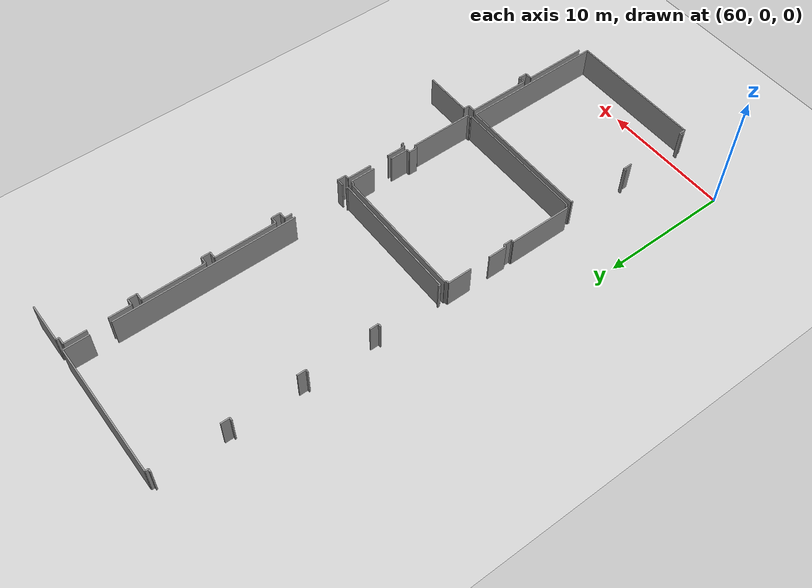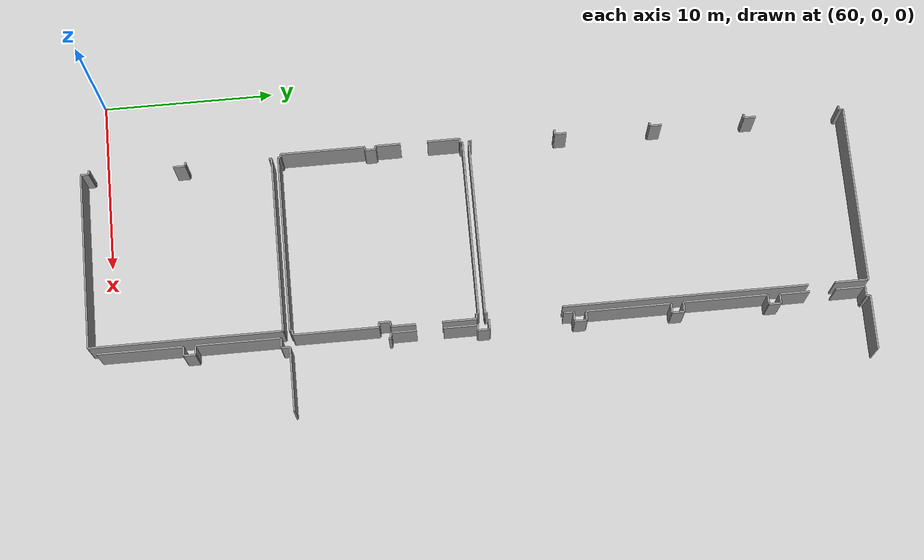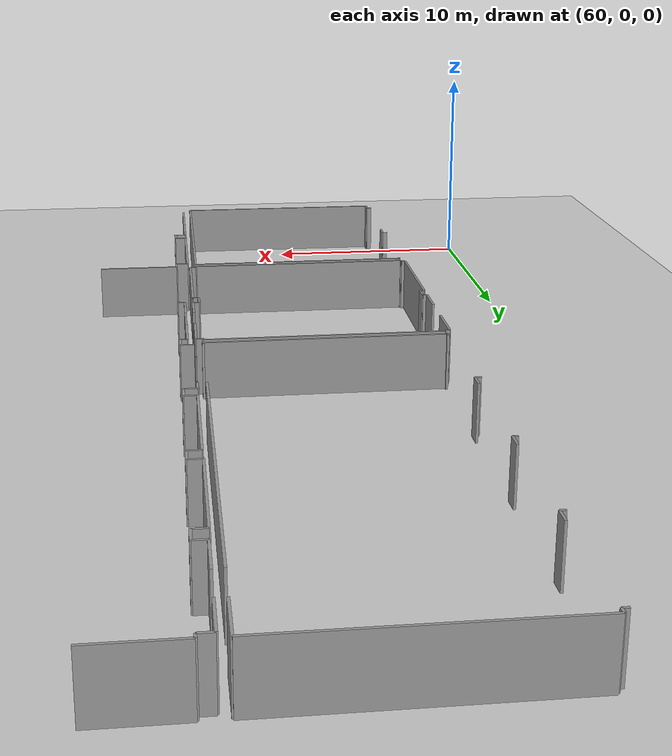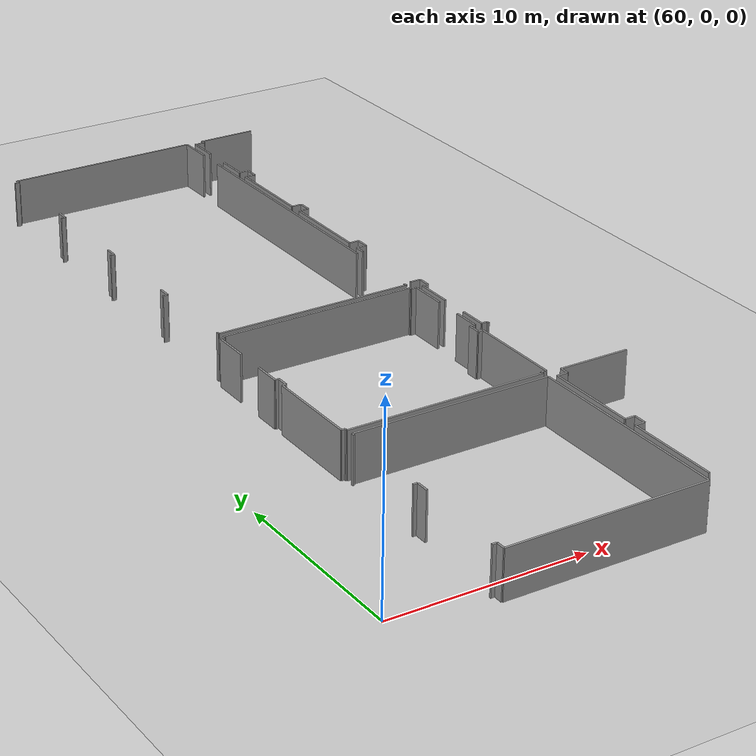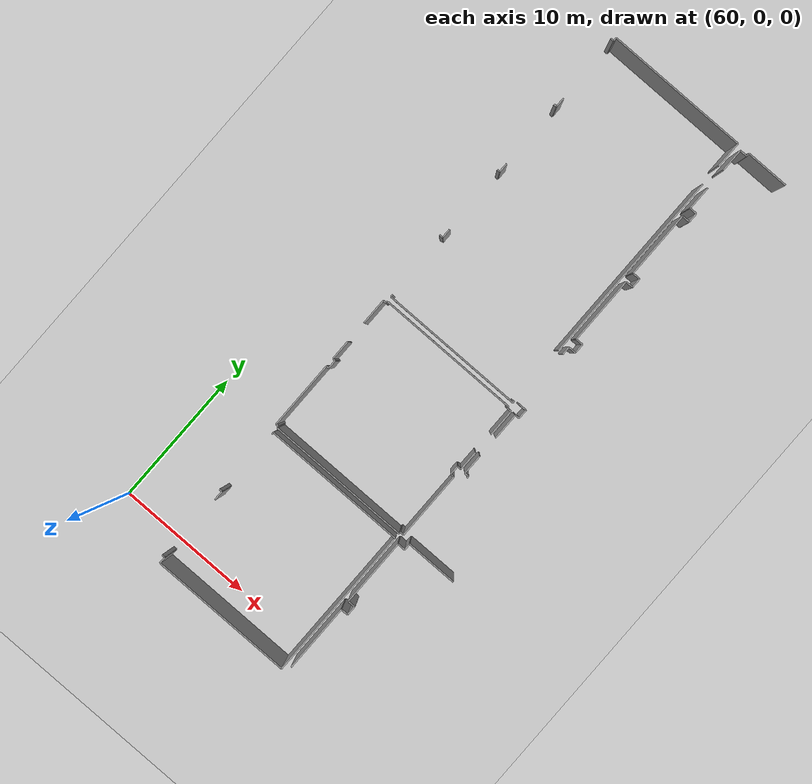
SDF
<sdf version="1.6">
 <world name="default">
  <model name="ground_plane">
   <static>1</static>
   <link name="link">
    <collision name="collision">
     <geometry><plane><normal>0 0 1</normal><size>100 100</size></plane></geometry>
     <surface><friction><ode><mu>100</mu><mu2>50</mu2></ode></friction></surface>
    </collision>
    <visual name="visual">
     <cast_shadows>0</cast_shadows>
     <geometry><plane><normal>0 0 1</normal><size>100 100</size></plane></geometry>
     <material>
      <script><uri>file://media/materials/scripts/gazebo.material</uri><name>Gazebo/Grey</name></script>
     </material>
    </visual>
   </link>
  </model>
  <model name="50015847">
   <static>1</static>
   <link name="Wall_575">
    <collision name="Wall_575_Collision">
     <geometry><box><size>0.710072710632 0.1 2.5</size></box></geometry>
     <pose>0.355036355316 0 1.25 0 0 0</pose>
    </collision>
    <visual name="Wall_575_Visual">
     <pose>0.355036355316 0 1.25 0 0 0</pose>
     <geometry><box><size>0.710072710632 0.1 2.5</size></box></geometry>
     <material>
      <script><uri>file://media/materials/scripts/gazebo.material</uri><name>Gazebo/Grey</name></script>
      <ambient>1 1 1 1</ambient>
     </material>
    </visual>
    <pose>197.183098592 -39.7666141252 0 0 0 1.57079632679</pose>
   </link>
   <link name="Wall_576">
    <collision name="Wall_576_Collision">
     <geometry><box><size>0.226267351401 0.1 2.5</size></box></geometry>
     <pose>0.1131336757 0 1.25 0 0 0</pose>
    </collision>
    <visual name="Wall_576_Visual">
     <pose>0.1131336757 0 1.25 0 0 0</pose>
     <geometry><box><size>0.226267351401 0.1 2.5</size></box></geometry>
     <material>
      <script><uri>file://media/materials/scripts/gazebo.material</uri><name>Gazebo/Grey</name></script>
      <ambient>1 1 1 1</ambient>
     </material>
    </visual>
    <pose>197.183098592 -39.0565414146 0 0 0 3.14159265359</pose>
   </link>
   <link name="Wall_580">
    <collision name="Wall_580_Collision">
     <geometry><box><size>0.150760156608 0.1 2.5</size></box></geometry>
     <pose>0.0753800783038 0 1.25 0 0 0</pose>
    </collision>
    <visual name="Wall_580_Visual">
     <pose>0.0753800783038 0 1.25 0 0 0</pose>
     <geometry><box><size>0.150760156608 0.1 2.5</size></box></geometry>
     <material>
      <script><uri>file://media/materials/scripts/gazebo.material</uri><name>Gazebo/Grey</name></script>
      <ambient>1 1 1 1</ambient>
     </material>
    </visual>
    <pose>197.183098592 -34.1546753445 0 0 0 1.57079632679</pose>
   </link>
   <link name="Wall_581">
    <collision name="Wall_581_Collision">
     <geometry><box><size>10.4082981644 0.1 2.5</size></box></geometry>
     <pose>5.20414908222 0 1.25 0 0 0</pose>
    </collision>
    <visual name="Wall_581_Visual">
     <pose>5.20414908222 0 1.25 0 0 0</pose>
     <geometry><box><size>10.4082981644 0.1 2.5</size></box></geometry>
     <material>
      <script><uri>file://media/materials/scripts/gazebo.material</uri><name>Gazebo/Grey</name></script>
      <ambient>1 1 1 1</ambient>
     </material>
    </visual>
    <pose>197.183098592 -34.0039151879 0 0 0 0.0</pose>
   </link>
   <link name="Wall_582">
    <collision name="Wall_582_Collision">
     <geometry><box><size>11.1671836071 0.1 2.5</size></box></geometry>
     <pose>5.58359180353 0 1.25 0 0 0</pose>
    </collision>
    <visual name="Wall_582_Visual">
     <pose>5.58359180353 0 1.25 0 0 0</pose>
     <geometry><box><size>11.1671836071 0.1 2.5</size></box></geometry>
     <material>
      <script><uri>file://media/materials/scripts/gazebo.material</uri><name>Gazebo/Grey</name></script>
      <ambient>1 1 1 1</ambient>
     </material>
    </visual>
    <pose>207.591396756 -34.0039151879 0 0 0 -1.57079632679</pose>
   </link>
   <link name="Wall_583">
    <collision name="Wall_583_Collision">
     <geometry><box><size>10.4060100676 0.1 2.5</size></box></geometry>
     <pose>5.20300503381 0 1.25 0 0 0</pose>
    </collision>
    <visual name="Wall_583_Visual">
     <pose>5.20300503381 0 1.25 0 0 0</pose>
     <geometry><box><size>10.4060100676 0.1 2.5</size></box></geometry>
     <material>
      <script><uri>file://media/materials/scripts/gazebo.material</uri><name>Gazebo/Grey</name></script>
      <ambient>1 1 1 1</ambient>
     </material>
    </visual>
    <pose>207.591396756 -45.1710987949 0 0 0 3.14159265359</pose>
   </link>
   <link name="Wall_584">
    <collision name="Wall_584_Collision">
     <geometry><box><size>0.479483398586 0.1 2.5</size></box></geometry>
     <pose>0.239741699293 0 1.25 0 0 0</pose>
    </collision>
    <visual name="Wall_584_Visual">
     <pose>0.239741699293 0 1.25 0 0 0</pose>
     <geometry><box><size>0.479483398586 0.1 2.5</size></box></geometry>
     <material>
      <script><uri>file://media/materials/scripts/gazebo.material</uri><name>Gazebo/Grey</name></script>
      <ambient>1 1 1 1</ambient>
     </material>
    </visual>
    <pose>197.185386688 -45.1710987949 0 0 0 1.57079632679</pose>
   </link>
   <link name="Wall_585">
    <collision name="Wall_585_Collision">
     <geometry><box><size>0.244336939807 0.1 2.5</size></box></geometry>
     <pose>0.122168469903 0 1.25 0 0 0</pose>
    </collision>
    <visual name="Wall_585_Visual">
     <pose>0.122168469903 0 1.25 0 0 0</pose>
     <geometry><box><size>0.244336939807 0.1 2.5</size></box></geometry>
     <material>
      <script><uri>file://media/materials/scripts/gazebo.material</uri><name>Gazebo/Grey</name></script>
      <ambient>1 1 1 1</ambient>
     </material>
    </visual>
    <pose>197.185386688 -44.6916153963 0 0 0 3.12910630982</pose>
   </link>
   <link name="Wall_586">
    <collision name="Wall_586_Collision">
     <geometry><box><size>10.3724513144 0.1 2.5</size></box></geometry>
     <pose>5.18622565719 0 1.25 0 0 0</pose>
    </collision>
    <visual name="Wall_586_Visual">
     <pose>5.18622565719 0 1.25 0 0 0</pose>
     <geometry><box><size>10.3724513144 0.1 2.5</size></box></geometry>
     <material>
      <script><uri>file://media/materials/scripts/gazebo.material</uri><name>Gazebo/Grey</name></script>
      <ambient>1 1 1 1</ambient>
     </material>
    </visual>
    <pose>197.201911832 -22.786393451 0 0 0 0.0</pose>
   </link>
   <link name="Wall_587">
    <collision name="Wall_587_Collision">
     <geometry><box><size>0.128133421467 0.1 2.5</size></box></geometry>
     <pose>0.0640667107337 0 1.25 0 0 0</pose>
    </collision>
    <visual name="Wall_587_Visual">
     <pose>0.0640667107337 0 1.25 0 0 0</pose>
     <geometry><box><size>0.128133421467 0.1 2.5</size></box></geometry>
     <material>
      <script><uri>file://media/materials/scripts/gazebo.material</uri><name>Gazebo/Grey</name></script>
      <ambient>1 1 1 1</ambient>
     </material>
    </visual>
    <pose>207.574363146 -22.786393451 0 0 0 -1.57079632679</pose>
   </link>
   <link name="Wall_588">
    <collision name="Wall_588_Collision">
     <geometry><box><size>0.308893069609 0.1 2.5</size></box></geometry>
     <pose>0.154446534804 0 1.25 0 0 0</pose>
    </collision>
    <visual name="Wall_588_Visual">
     <pose>0.154446534804 0 1.25 0 0 0</pose>
     <geometry><box><size>0.308893069609 0.1 2.5</size></box></geometry>
     <material>
      <script><uri>file://media/materials/scripts/gazebo.material</uri><name>Gazebo/Grey</name></script>
      <ambient>1 1 1 1</ambient>
     </material>
    </visual>
    <pose>207.574363146 -22.9145268724 0 0 0 0.0</pose>
   </link>
   <link name="Wall_589">
    <collision name="Wall_589_Collision">
     <geometry><box><size>1.97716987848 0.1 2.5</size></box></geometry>
     <pose>0.988584939238 0 1.25 0 0 0</pose>
    </collision>
    <visual name="Wall_589_Visual">
     <pose>0.988584939238 0 1.25 0 0 0</pose>
     <geometry><box><size>1.97716987848 0.1 2.5</size></box></geometry>
     <material>
      <script><uri>file://media/materials/scripts/gazebo.material</uri><name>Gazebo/Grey</name></script>
      <ambient>1 1 1 1</ambient>
     </material>
    </visual>
    <pose>207.883256216 -22.9145268724 0 0 0 -1.57079632679</pose>
   </link>
   <link name="Wall_590">
    <collision name="Wall_590_Collision">
     <geometry><box><size>1.44251792343 0.1 2.5</size></box></geometry>
     <pose>0.721258961713 0 1.25 0 0 0</pose>
    </collision>
    <visual name="Wall_590_Visual">
     <pose>0.721258961713 0 1.25 0 0 0</pose>
     <geometry><box><size>1.44251792343 0.1 2.5</size></box></geometry>
     <material>
      <script><uri>file://media/materials/scripts/gazebo.material</uri><name>Gazebo/Grey</name></script>
      <ambient>1 1 1 1</ambient>
     </material>
    </visual>
    <pose>207.883256216 -26.4150607617 0 0 0 -1.57079632679</pose>
   </link>
   <link name="Wall_591">
    <collision name="Wall_591_Collision">
     <geometry><box><size>0.280673208929 0.1 2.5</size></box></geometry>
     <pose>0.140336604464 0 1.25 0 0 0</pose>
    </collision>
    <visual name="Wall_591_Visual">
     <pose>0.140336604464 0 1.25 0 0 0</pose>
     <geometry><box><size>0.280673208929 0.1 2.5</size></box></geometry>
     <material>
      <script><uri>file://media/materials/scripts/gazebo.material</uri><name>Gazebo/Grey</name></script>
      <ambient>1 1 1 1</ambient>
     </material>
    </visual>
    <pose>207.883256216 -27.8575786851 0 0 0 3.14159265359</pose>
   </link>
   <link name="Wall_592">
    <collision name="Wall_592_Collision">
     <geometry><box><size>0.666598871206 0.1 2.5</size></box></geometry>
     <pose>0.333299435603 0 1.25 0 0 0</pose>
    </collision>
    <visual name="Wall_592_Visual">
     <pose>0.333299435603 0 1.25 0 0 0</pose>
     <geometry><box><size>0.666598871206 0.1 2.5</size></box></geometry>
     <material>
      <script><uri>file://media/materials/scripts/gazebo.material</uri><name>Gazebo/Grey</name></script>
      <ambient>1 1 1 1</ambient>
     </material>
    </visual>
    <pose>207.602583007 -27.8575786851 0 0 0 -1.57079632679</pose>
   </link>
   <link name="Wall_593">
    <collision name="Wall_593_Collision">
     <geometry><box><size>0.265927696141 0.1 2.5</size></box></geometry>
     <pose>0.13296384807 0 1.25 0 0 0</pose>
    </collision>
    <visual name="Wall_593_Visual">
     <pose>0.13296384807 0 1.25 0 0 0</pose>
     <geometry><box><size>0.265927696141 0.1 2.5</size></box></geometry>
     <material>
      <script><uri>file://media/materials/scripts/gazebo.material</uri><name>Gazebo/Grey</name></script>
      <ambient>1 1 1 1</ambient>
     </material>
    </visual>
    <pose>207.602583007 -28.5241775563 0 0 0 0.0</pose>
   </link>
   <link name="Wall_594">
    <collision name="Wall_594_Collision">
     <geometry><box><size>4.95805155845 0.1 2.5</size></box></geometry>
     <pose>2.47902577922 0 1.25 0 0 0</pose>
    </collision>
    <visual name="Wall_594_Visual">
     <pose>2.47902577922 0 1.25 0 0 0</pose>
     <geometry><box><size>4.95805155845 0.1 2.5</size></box></geometry>
     <material>
      <script><uri>file://media/materials/scripts/gazebo.material</uri><name>Gazebo/Grey</name></script>
      <ambient>1 1 1 1</ambient>
     </material>
    </visual>
    <pose>207.868510703 -28.5241775563 0 0 0 -1.57079632679</pose>
   </link>
   <link name="Wall_595">
    <collision name="Wall_595_Collision">
     <geometry><box><size>0.26897849189 0.1 2.5</size></box></geometry>
     <pose>0.134489245945 0 1.25 0 0 0</pose>
    </collision>
    <visual name="Wall_595_Visual">
     <pose>0.134489245945 0 1.25 0 0 0</pose>
     <geometry><box><size>0.26897849189 0.1 2.5</size></box></geometry>
     <material>
      <script><uri>file://media/materials/scripts/gazebo.material</uri><name>Gazebo/Grey</name></script>
      <ambient>1 1 1 1</ambient>
     </material>
    </visual>
    <pose>207.868510703 -33.4822291148 0 0 0 3.14159265359</pose>
   </link>
   <link name="Wall_596">
    <collision name="Wall_596_Collision">
     <geometry><box><size>0.137285808715 0.1 2.5</size></box></geometry>
     <pose>0.0686429043576 0 1.25 0 0 0</pose>
    </collision>
    <visual name="Wall_596_Visual">
     <pose>0.0686429043576 0 1.25 0 0 0</pose>
     <geometry><box><size>0.137285808715 0.1 2.5</size></box></geometry>
     <material>
      <script><uri>file://media/materials/scripts/gazebo.material</uri><name>Gazebo/Grey</name></script>
      <ambient>1 1 1 1</ambient>
     </material>
    </visual>
    <pose>207.599532211 -33.4822291148 0 0 0 -1.57079632679</pose>
   </link>
   <link name="Wall_597">
    <collision name="Wall_597_Collision">
     <geometry><box><size>10.4428738496 0.1 2.5</size></box></geometry>
     <pose>5.2214369248 0 1.25 0 0 0</pose>
    </collision>
    <visual name="Wall_597_Visual">
     <pose>5.2214369248 0 1.25 0 0 0</pose>
     <geometry><box><size>10.4428738496 0.1 2.5</size></box></geometry>
     <material>
      <script><uri>file://media/materials/scripts/gazebo.material</uri><name>Gazebo/Grey</name></script>
      <ambient>1 1 1 1</ambient>
     </material>
    </visual>
    <pose>207.599532211 -33.6195149235 0 0 0 3.14159265359</pose>
   </link>
   <link name="Wall_598">
    <collision name="Wall_598_Collision">
     <geometry><box><size>0.143133167234 0.1 2.5</size></box></geometry>
     <pose>0.0715665836172 0 1.25 0 0 0</pose>
    </collision>
    <visual name="Wall_598_Visual">
     <pose>0.0715665836172 0 1.25 0 0 0</pose>
     <geometry><box><size>0.143133167234 0.1 2.5</size></box></geometry>
     <material>
      <script><uri>file://media/materials/scripts/gazebo.material</uri><name>Gazebo/Grey</name></script>
      <ambient>1 1 1 1</ambient>
     </material>
    </visual>
    <pose>197.156658362 -33.6195149235 0 0 0 1.57079632679</pose>
   </link>
   <link name="Wall_599">
    <collision name="Wall_599_Collision">
     <geometry><box><size>0.191183200285 0.1 2.5</size></box></geometry>
     <pose>0.0955916001424 0 1.25 0 0 0</pose>
    </collision>
    <visual name="Wall_599_Visual">
     <pose>0.0955916001424 0 1.25 0 0 0</pose>
     <geometry><box><size>0.191183200285 0.1 2.5</size></box></geometry>
     <material>
      <script><uri>file://media/materials/scripts/gazebo.material</uri><name>Gazebo/Grey</name></script>
      <ambient>1 1 1 1</ambient>
     </material>
    </visual>
    <pose>197.156658362 -33.4763817562 0 0 0 3.14159265359</pose>
   </link>
   <link name="Wall_600">
    <collision name="Wall_600_Collision">
     <geometry><box><size>4.95474652972 0.1 2.5</size></box></geometry>
     <pose>2.47737326486 0 1.25 0 0 0</pose>
    </collision>
    <visual name="Wall_600_Visual">
     <pose>2.47737326486 0 1.25 0 0 0</pose>
     <geometry><box><size>4.95474652972 0.1 2.5</size></box></geometry>
     <material>
      <script><uri>file://media/materials/scripts/gazebo.material</uri><name>Gazebo/Grey</name></script>
      <ambient>1 1 1 1</ambient>
     </material>
    </visual>
    <pose>196.965475161 -33.4763817562 0 0 0 1.57079632679</pose>
   </link>
   <link name="Wall_601">
    <collision name="Wall_601_Collision">
     <geometry><box><size>0.192962831138 0.1 2.5</size></box></geometry>
     <pose>0.0964814155692 0 1.25 0 0 0</pose>
    </collision>
    <visual name="Wall_601_Visual">
     <pose>0.0964814155692 0 1.25 0 0 0</pose>
     <geometry><box><size>0.192962831138 0.1 2.5</size></box></geometry>
     <material>
      <script><uri>file://media/materials/scripts/gazebo.material</uri><name>Gazebo/Grey</name></script>
      <ambient>1 1 1 1</ambient>
     </material>
    </visual>
    <pose>196.965475161 -28.5216352265 0 0 0 0.0</pose>
   </link>
   <link name="Wall_602">
    <collision name="Wall_602_Collision">
     <geometry><box><size>0.636599379672 0.1 2.5</size></box></geometry>
     <pose>0.318299689836 0 1.25 0 0 0</pose>
    </collision>
    <visual name="Wall_602_Visual">
     <pose>0.318299689836 0 1.25 0 0 0</pose>
     <geometry><box><size>0.636599379672 0.1 2.5</size></box></geometry>
     <material>
      <script><uri>file://media/materials/scripts/gazebo.material</uri><name>Gazebo/Grey</name></script>
      <ambient>1 1 1 1</ambient>
     </material>
    </visual>
    <pose>197.158437993 -28.5216352265 0 0 0 1.57079632679</pose>
   </link>
   <link name="Wall_603">
    <collision name="Wall_603_Collision">
     <geometry><box><size>0.194742461992 0.1 2.5</size></box></geometry>
     <pose>0.0973712309961 0 1.25 0 0 0</pose>
    </collision>
    <visual name="Wall_603_Visual">
     <pose>0.0973712309961 0 1.25 0 0 0</pose>
     <geometry><box><size>0.194742461992 0.1 2.5</size></box></geometry>
     <material>
      <script><uri>file://media/materials/scripts/gazebo.material</uri><name>Gazebo/Grey</name></script>
      <ambient>1 1 1 1</ambient>
     </material>
    </visual>
    <pose>197.158437993 -27.8850358469 0 0 0 3.14159265359</pose>
   </link>
   <link name="Wall_604">
    <collision name="Wall_604_Collision">
     <geometry><box><size>1.46616159048 0.1 2.5</size></box></geometry>
     <pose>0.733080795241 0 1.25 0 0 0</pose>
    </collision>
    <visual name="Wall_604_Visual">
     <pose>0.733080795241 0 1.25 0 0 0</pose>
     <geometry><box><size>1.46616159048 0.1 2.5</size></box></geometry>
     <material>
      <script><uri>file://media/materials/scripts/gazebo.material</uri><name>Gazebo/Grey</name></script>
      <ambient>1 1 1 1</ambient>
     </material>
    </visual>
    <pose>196.963695531 -27.8850358469 0 0 0 1.57079632679</pose>
   </link>
   <link name="Wall_605">
    <collision name="Wall_605_Collision">
     <geometry><box><size>1.91234046881 0.1 2.5</size></box></geometry>
     <pose>0.956170234403 0 1.25 0 0 0</pose>
    </collision>
    <visual name="Wall_605_Visual">
     <pose>0.956170234403 0 1.25 0 0 0</pose>
     <geometry><box><size>1.91234046881 0.1 2.5</size></box></geometry>
     <material>
      <script><uri>file://media/materials/scripts/gazebo.material</uri><name>Gazebo/Grey</name></script>
      <ambient>1 1 1 1</ambient>
     </material>
    </visual>
    <pose>196.963695531 -24.8316977678 0 0 0 1.57079632679</pose>
   </link>
   <link name="Wall_606">
    <collision name="Wall_606_Collision">
     <geometry><box><size>0.218640362028 0.1 2.5</size></box></geometry>
     <pose>0.109320181014 0 1.25 0 0 0</pose>
    </collision>
    <visual name="Wall_606_Visual">
     <pose>0.109320181014 0 1.25 0 0 0</pose>
     <geometry><box><size>0.218640362028 0.1 2.5</size></box></geometry>
     <material>
      <script><uri>file://media/materials/scripts/gazebo.material</uri><name>Gazebo/Grey</name></script>
      <ambient>1 1 1 1</ambient>
     </material>
    </visual>
    <pose>196.963695531 -22.919357299 0 0 0 0.0</pose>
   </link>
   <link name="Wall_607">
    <collision name="Wall_607_Collision">
     <geometry><box><size>0.134397181134 0.1 2.5</size></box></geometry>
     <pose>0.0671985905669 0 1.25 0 0 0</pose>
    </collision>
    <visual name="Wall_607_Visual">
     <pose>0.0671985905669 0 1.25 0 0 0</pose>
     <geometry><box><size>0.134397181134 0.1 2.5</size></box></geometry>
     <material>
      <script><uri>file://media/materials/scripts/gazebo.material</uri><name>Gazebo/Grey</name></script>
      <ambient>1 1 1 1</ambient>
     </material>
    </visual>
    <pose>197.182335893 -22.919357299 0 0 0 1.4246189345</pose>
   </link>
   <link name="Wall_608">
    <collision name="Wall_608_Collision">
     <geometry><box><size>4.94559414247 0.1 2.5</size></box></geometry>
     <pose>2.47279707124 0 1.25 0 0 0</pose>
    </collision>
    <visual name="Wall_608_Visual">
     <pose>2.47279707124 0 1.25 0 0 0</pose>
     <geometry><box><size>4.94559414247 0.1 2.5</size></box></geometry>
     <material>
      <script><uri>file://media/materials/scripts/gazebo.material</uri><name>Gazebo/Grey</name></script>
      <ambient>1 1 1 1</ambient>
     </material>
    </visual>
    <pose>207.994864494 -44.6898357655 0 0 0 1.57079632679</pose>
   </link>
   <link name="Wall_609">
    <collision name="Wall_609_Collision">
     <geometry><box><size>0.530838460365 0.1 2.5</size></box></geometry>
     <pose>0.265419230183 0 1.25 0 0 0</pose>
    </collision>
    <visual name="Wall_609_Visual">
     <pose>0.265419230183 0 1.25 0 0 0</pose>
     <geometry><box><size>0.530838460365 0.1 2.5</size></box></geometry>
     <material>
      <script><uri>file://media/materials/scripts/gazebo.material</uri><name>Gazebo/Grey</name></script>
      <ambient>1 1 1 1</ambient>
     </material>
    </visual>
    <pose>207.994864494 -39.744241623 0 0 0 0.0</pose>
   </link>
   <link name="Wall_610">
    <collision name="Wall_610_Collision">
     <geometry><box><size>0.681344383993 0.1 2.5</size></box></geometry>
     <pose>0.340672191997 0 1.25 0 0 0</pose>
    </collision>
    <visual name="Wall_610_Visual">
     <pose>0.340672191997 0 1.25 0 0 0</pose>
     <geometry><box><size>0.681344383993 0.1 2.5</size></box></geometry>
     <material>
      <script><uri>file://media/materials/scripts/gazebo.material</uri><name>Gazebo/Grey</name></script>
      <ambient>1 1 1 1</ambient>
     </material>
    </visual>
    <pose>208.525702954 -39.744241623 0 0 0 1.57079632679</pose>
   </link>
   <link name="Wall_611">
    <collision name="Wall_611_Collision">
     <geometry><box><size>0.538465449738 0.1 2.5</size></box></geometry>
     <pose>0.269232724869 0 1.25 0 0 0</pose>
    </collision>
    <visual name="Wall_611_Visual">
     <pose>0.269232724869 0 1.25 0 0 0</pose>
     <geometry><box><size>0.538465449738 0.1 2.5</size></box></geometry>
     <material>
      <script><uri>file://media/materials/scripts/gazebo.material</uri><name>Gazebo/Grey</name></script>
      <ambient>1 1 1 1</ambient>
     </material>
    </visual>
    <pose>208.525702954 -39.062897239 0 0 0 3.14159265359</pose>
   </link>
   <link name="Wall_612">
    <collision name="Wall_612_Collision">
     <geometry><box><size>4.90212030305 0.1 2.5</size></box></geometry>
     <pose>2.45106015152 0 1.25 0 0 0</pose>
    </collision>
    <visual name="Wall_612_Visual">
     <pose>2.45106015152 0 1.25 0 0 0</pose>
     <geometry><box><size>4.90212030305 0.1 2.5</size></box></geometry>
     <material>
      <script><uri>file://media/materials/scripts/gazebo.material</uri><name>Gazebo/Grey</name></script>
      <ambient>1 1 1 1</ambient>
     </material>
    </visual>
    <pose>207.987237504 -39.062897239 0 0 0 1.57079632679</pose>
   </link>
   <link name="Wall_613">
    <collision name="Wall_613_Collision">
     <geometry><box><size>0.571515737021 0.1 2.5</size></box></geometry>
     <pose>0.285757868511 0 1.25 0 0 0</pose>
    </collision>
    <visual name="Wall_613_Visual">
     <pose>0.285757868511 0 1.25 0 0 0</pose>
     <geometry><box><size>0.571515737021 0.1 2.5</size></box></geometry>
     <material>
      <script><uri>file://media/materials/scripts/gazebo.material</uri><name>Gazebo/Grey</name></script>
      <ambient>1 1 1 1</ambient>
     </material>
    </visual>
    <pose>207.987237504 -34.160776936 0 0 0 0.0</pose>
   </link>
   <link name="Wall_614">
    <collision name="Wall_614_Collision">
     <geometry><box><size>0.483551126252 0.1 2.5</size></box></geometry>
     <pose>0.241775563126 0 1.25 0 0 0</pose>
    </collision>
    <visual name="Wall_614_Visual">
     <pose>0.241775563126 0 1.25 0 0 0</pose>
     <geometry><box><size>0.483551126252 0.1 2.5</size></box></geometry>
     <material>
      <script><uri>file://media/materials/scripts/gazebo.material</uri><name>Gazebo/Grey</name></script>
      <ambient>1 1 1 1</ambient>
     </material>
    </visual>
    <pose>208.558753241 -34.160776936 0 0 0 1.57079632679</pose>
   </link>
   <link name="Wall_615">
    <collision name="Wall_615_Collision">
     <geometry><box><size>3.74002135557 0.1 2.5</size></box></geometry>
     <pose>1.87001067779 0 1.25 0 0 0</pose>
    </collision>
    <visual name="Wall_615_Visual">
     <pose>1.87001067779 0 1.25 0 0 0</pose>
     <geometry><box><size>3.74002135557 0.1 2.5</size></box></geometry>
     <material>
      <script><uri>file://media/materials/scripts/gazebo.material</uri><name>Gazebo/Grey</name></script>
      <ambient>1 1 1 1</ambient>
     </material>
    </visual>
    <pose>208.558753241 -33.6772258097 0 0 0 0.0</pose>
   </link>
   <link name="Wall_657">
    <collision name="Wall_657_Collision">
     <geometry><box><size>0.143641633193 0.1 2.5</size></box></geometry>
     <pose>0.0718208165963 0 1.25 0 0 0</pose>
    </collision>
    <visual name="Wall_657_Visual">
     <pose>0.0718208165963 0 1.25 0 0 0</pose>
     <geometry><box><size>0.143641633193 0.1 2.5</size></box></geometry>
     <material>
      <script><uri>file://media/materials/scripts/gazebo.material</uri><name>Gazebo/Grey</name></script>
      <ambient>1 1 1 1</ambient>
     </material>
    </visual>
    <pose>208.553922815 -28.0268978492 0 0 0 1.57079632679</pose>
   </link>
   <link name="Wall_658">
    <collision name="Wall_658_Collision">
     <geometry><box><size>0.305333807902 0.1 2.5</size></box></geometry>
     <pose>0.152666903951 0 1.25 0 0 0</pose>
    </collision>
    <visual name="Wall_658_Visual">
     <pose>0.152666903951 0 1.25 0 0 0</pose>
     <geometry><box><size>0.305333807902 0.1 2.5</size></box></geometry>
     <material>
      <script><uri>file://media/materials/scripts/gazebo.material</uri><name>Gazebo/Grey</name></script>
      <ambient>1 1 1 1</ambient>
     </material>
    </visual>
    <pose>208.553922815 -27.883256216 0 0 0 3.14159265359</pose>
   </link>
   <link name="Wall_659">
    <collision name="Wall_659_Collision">
     <geometry><box><size>1.48141556923 0.1 2.5</size></box></geometry>
     <pose>0.740707784614 0 1.25 0 0 0</pose>
    </collision>
    <visual name="Wall_659_Visual">
     <pose>0.740707784614 0 1.25 0 0 0</pose>
     <geometry><box><size>1.48141556923 0.1 2.5</size></box></geometry>
     <material>
      <script><uri>file://media/materials/scripts/gazebo.material</uri><name>Gazebo/Grey</name></script>
      <ambient>1 1 1 1</ambient>
     </material>
    </visual>
    <pose>208.248589007 -27.883256216 0 0 0 1.57079632679</pose>
   </link>
   <link name="Wall_660">
    <collision name="Wall_660_Collision">
     <geometry><box><size>1.95123811461 0.1 2.5</size></box></geometry>
     <pose>0.975619057304 0 1.25 0 0 0</pose>
    </collision>
    <visual name="Wall_660_Visual">
     <pose>0.975619057304 0 1.25 0 0 0</pose>
     <geometry><box><size>1.95123811461 0.1 2.5</size></box></geometry>
     <material>
      <script><uri>file://media/materials/scripts/gazebo.material</uri><name>Gazebo/Grey</name></script>
      <ambient>1 1 1 1</ambient>
     </material>
    </visual>
    <pose>208.248589007 -24.8533075711 0 0 0 1.57079632679</pose>
   </link>
   <link name="Wall_661">
    <collision name="Wall_661_Collision">
     <geometry><box><size>0.312198098337 0.1 2.5</size></box></geometry>
     <pose>0.156099049169 0 1.25 0 0 0</pose>
    </collision>
    <visual name="Wall_661_Visual">
     <pose>0.156099049169 0 1.25 0 0 0</pose>
     <geometry><box><size>0.312198098337 0.1 2.5</size></box></geometry>
     <material>
      <script><uri>file://media/materials/scripts/gazebo.material</uri><name>Gazebo/Grey</name></script>
      <ambient>1 1 1 1</ambient>
     </material>
    </visual>
    <pose>208.248589007 -22.9020694564 0 0 0 0.0</pose>
   </link>
   <link name="Wall_662">
    <collision name="Wall_662_Collision">
     <geometry><box><size>0.679310520161 0.1 2.5</size></box></geometry>
     <pose>0.33965526008 0 1.25 0 0 0</pose>
    </collision>
    <visual name="Wall_662_Visual">
     <pose>0.33965526008 0 1.25 0 0 0</pose>
     <geometry><box><size>0.679310520161 0.1 2.5</size></box></geometry>
     <material>
      <script><uri>file://media/materials/scripts/gazebo.material</uri><name>Gazebo/Grey</name></script>
      <ambient>1 1 1 1</ambient>
     </material>
    </visual>
    <pose>208.560787105 -22.9020694564 0 0 0 1.57079632679</pose>
   </link>
   <link name="Wall_663">
    <collision name="Wall_663_Collision">
     <geometry><box><size>0.578125794478 0.1 2.5</size></box></geometry>
     <pose>0.289062897239 0 1.25 0 0 0</pose>
    </collision>
    <visual name="Wall_663_Visual">
     <pose>0.289062897239 0 1.25 0 0 0</pose>
     <geometry><box><size>0.578125794478 0.1 2.5</size></box></geometry>
     <material>
      <script><uri>file://media/materials/scripts/gazebo.material</uri><name>Gazebo/Grey</name></script>
      <ambient>1 1 1 1</ambient>
     </material>
    </visual>
    <pose>208.560787105 -22.2227589363 0 0 0 3.14159265359</pose>
   </link>
   <link name="Wall_664">
    <collision name="Wall_664_Collision">
     <geometry><box><size>0.590074744496 0.1 2.5</size></box></geometry>
     <pose>0.295037372248 0 1.25 0 0 0</pose>
    </collision>
    <visual name="Wall_664_Visual">
     <pose>0.295037372248 0 1.25 0 0 0</pose>
     <geometry><box><size>0.590074744496 0.1 2.5</size></box></geometry>
     <material>
      <script><uri>file://media/materials/scripts/gazebo.material</uri><name>Gazebo/Grey</name></script>
      <ambient>1 1 1 1</ambient>
     </material>
    </visual>
    <pose>207.982661311 -17.9246961916 0 0 0 1.57079632679</pose>
   </link>
   <link name="Wall_665">
    <collision name="Wall_665_Collision">
     <geometry><box><size>0.550668632735 0.1 2.5</size></box></geometry>
     <pose>0.275334316368 0 1.25 0 0 0</pose>
    </collision>
    <visual name="Wall_665_Visual">
     <pose>0.275334316368 0 1.25 0 0 0</pose>
     <geometry><box><size>0.550668632735 0.1 2.5</size></box></geometry>
     <material>
      <script><uri>file://media/materials/scripts/gazebo.material</uri><name>Gazebo/Grey</name></script>
      <ambient>1 1 1 1</ambient>
     </material>
    </visual>
    <pose>207.982661311 -17.3346214471 0 0 0 0.0</pose>
   </link>
   <link name="Wall_666">
    <collision name="Wall_666_Collision">
     <geometry><box><size>0.706513448925 0.1 2.5</size></box></geometry>
     <pose>0.353256724462 0 1.25 0 0 0</pose>
    </collision>
    <visual name="Wall_666_Visual">
     <pose>0.353256724462 0 1.25 0 0 0</pose>
     <geometry><box><size>0.706513448925 0.1 2.5</size></box></geometry>
     <material>
      <script><uri>file://media/materials/scripts/gazebo.material</uri><name>Gazebo/Grey</name></script>
      <ambient>1 1 1 1</ambient>
     </material>
    </visual>
    <pose>208.533329944 -17.3346214471 0 0 0 1.57079632679</pose>
   </link>
   <link name="Wall_667">
    <collision name="Wall_667_Collision">
     <geometry><box><size>0.531855392281 0.1 2.5</size></box></geometry>
     <pose>0.265927696141 0 1.25 0 0 0</pose>
    </collision>
    <visual name="Wall_667_Visual">
     <pose>0.265927696141 0 1.25 0 0 0</pose>
     <geometry><box><size>0.531855392281 0.1 2.5</size></box></geometry>
     <material>
      <script><uri>file://media/materials/scripts/gazebo.material</uri><name>Gazebo/Grey</name></script>
      <ambient>1 1 1 1</ambient>
     </material>
    </visual>
    <pose>208.533329944 -16.6281079982 0 0 0 3.14159265359</pose>
   </link>
   <link name="Wall_668">
    <collision name="Wall_668_Collision">
     <geometry><box><size>4.91178115625 0.1 2.5</size></box></geometry>
     <pose>2.45589057813 0 1.25 0 0 0</pose>
    </collision>
    <visual name="Wall_668_Visual">
     <pose>2.45589057813 0 1.25 0 0 0</pose>
     <geometry><box><size>4.91178115625 0.1 2.5</size></box></geometry>
     <material>
      <script><uri>file://media/materials/scripts/gazebo.material</uri><name>Gazebo/Grey</name></script>
      <ambient>1 1 1 1</ambient>
     </material>
    </visual>
    <pose>208.001474551 -16.6281079982 0 0 0 1.57079632679</pose>
   </link>
   <link name="Wall_669">
    <collision name="Wall_669_Collision">
     <geometry><box><size>0.540245080592 0.1 2.5</size></box></geometry>
     <pose>0.270122540296 0 1.25 0 0 0</pose>
    </collision>
    <visual name="Wall_669_Visual">
     <pose>0.270122540296 0 1.25 0 0 0</pose>
     <geometry><box><size>0.540245080592 0.1 2.5</size></box></geometry>
     <material>
      <script><uri>file://media/materials/scripts/gazebo.material</uri><name>Gazebo/Grey</name></script>
      <ambient>1 1 1 1</ambient>
     </material>
    </visual>
    <pose>208.001474551 -11.7163268419 0 0 0 0.0</pose>
   </link>
   <link name="Wall_670">
    <collision name="Wall_670_Collision">
     <geometry><box><size>0.706513448925 0.1 2.5</size></box></geometry>
     <pose>0.353256724462 0 1.25 0 0 0</pose>
    </collision>
    <visual name="Wall_670_Visual">
     <pose>0.353256724462 0 1.25 0 0 0</pose>
     <geometry><box><size>0.706513448925 0.1 2.5</size></box></geometry>
     <material>
      <script><uri>file://media/materials/scripts/gazebo.material</uri><name>Gazebo/Grey</name></script>
      <ambient>1 1 1 1</ambient>
     </material>
    </visual>
    <pose>208.541719632 -11.7163268419 0 0 0 1.57079632679</pose>
   </link>
   <link name="Wall_671">
    <collision name="Wall_671_Collision">
     <geometry><box><size>0.565159912544 0.1 2.5</size></box></geometry>
     <pose>0.282579956272 0 1.25 0 0 0</pose>
    </collision>
    <visual name="Wall_671_Visual">
     <pose>0.282579956272 0 1.25 0 0 0</pose>
     <geometry><box><size>0.565159912544 0.1 2.5</size></box></geometry>
     <material>
      <script><uri>file://media/materials/scripts/gazebo.material</uri><name>Gazebo/Grey</name></script>
      <ambient>1 1 1 1</ambient>
     </material>
    </visual>
    <pose>208.541719632 -11.009813393 0 0 0 3.14159265359</pose>
   </link>
   <link name="Wall_672">
    <collision name="Wall_672_Collision">
     <geometry><box><size>4.88661209132 0.1 2.5</size></box></geometry>
     <pose>2.44330604566 0 1.25 0 0 0</pose>
    </collision>
    <visual name="Wall_672_Visual">
     <pose>2.44330604566 0 1.25 0 0 0</pose>
     <geometry><box><size>4.88661209132 0.1 2.5</size></box></geometry>
     <material>
      <script><uri>file://media/materials/scripts/gazebo.material</uri><name>Gazebo/Grey</name></script>
      <ambient>1 1 1 1</ambient>
     </material>
    </visual>
    <pose>207.976559719 -11.009813393 0 0 0 1.57079632679</pose>
   </link>
   <link name="Wall_673">
    <collision name="Wall_673_Collision">
     <geometry><box><size>0.565159912544 0.1 2.5</size></box></geometry>
     <pose>0.282579956272 0 1.25 0 0 0</pose>
    </collision>
    <visual name="Wall_673_Visual">
     <pose>0.282579956272 0 1.25 0 0 0</pose>
     <geometry><box><size>0.565159912544 0.1 2.5</size></box></geometry>
     <material>
      <script><uri>file://media/materials/scripts/gazebo.material</uri><name>Gazebo/Grey</name></script>
      <ambient>1 1 1 1</ambient>
     </material>
    </visual>
    <pose>207.976559719 -6.12320130167 0 0 0 0.0</pose>
   </link>
   <link name="Wall_674">
    <collision name="Wall_674_Collision">
     <geometry><box><size>0.698123760614 0.1 2.5</size></box></geometry>
     <pose>0.349061880307 0 1.25 0 0 0</pose>
    </collision>
    <visual name="Wall_674_Visual">
     <pose>0.349061880307 0 1.25 0 0 0</pose>
     <geometry><box><size>0.698123760614 0.1 2.5</size></box></geometry>
     <material>
      <script><uri>file://media/materials/scripts/gazebo.material</uri><name>Gazebo/Grey</name></script>
      <ambient>1 1 1 1</ambient>
     </material>
    </visual>
    <pose>208.541719632 -6.12320130167 0 0 0 1.57079632679</pose>
   </link>
   <link name="Wall_675">
    <collision name="Wall_675_Collision">
     <geometry><box><size>0.531855392281 0.1 2.5</size></box></geometry>
     <pose>0.265927696141 0 1.25 0 0 0</pose>
    </collision>
    <visual name="Wall_675_Visual">
     <pose>0.265927696141 0 1.25 0 0 0</pose>
     <geometry><box><size>0.531855392281 0.1 2.5</size></box></geometry>
     <material>
      <script><uri>file://media/materials/scripts/gazebo.material</uri><name>Gazebo/Grey</name></script>
      <ambient>1 1 1 1</ambient>
     </material>
    </visual>
    <pose>208.541719632 -5.42507754106 0 0 0 3.14159265359</pose>
   </link>
   <link name="Wall_676">
    <collision name="Wall_676_Collision">
     <geometry><box><size>1.72878425789 0.1 2.5</size></box></geometry>
     <pose>0.864392128947 0 1.25 0 0 0</pose>
    </collision>
    <visual name="Wall_676_Visual">
     <pose>0.864392128947 0 1.25 0 0 0</pose>
     <geometry><box><size>1.72878425789 0.1 2.5</size></box></geometry>
     <material>
      <script><uri>file://media/materials/scripts/gazebo.material</uri><name>Gazebo/Grey</name></script>
      <ambient>1 1 1 1</ambient>
     </material>
    </visual>
    <pose>208.00986424 -5.42507754106 0 0 0 1.57079632679</pose>
   </link>
   <link name="Wall_677">
    <collision name="Wall_677_Collision">
     <geometry><box><size>1.68988661209 0.1 2.5</size></box></geometry>
     <pose>0.844943306046 0 1.25 0 0 0</pose>
    </collision>
    <visual name="Wall_677_Visual">
     <pose>0.844943306046 0 1.25 0 0 0</pose>
     <geometry><box><size>1.68988661209 0.1 2.5</size></box></geometry>
     <material>
      <script><uri>file://media/materials/scripts/gazebo.material</uri><name>Gazebo/Grey</name></script>
      <ambient>1 1 1 1</ambient>
     </material>
    </visual>
    <pose>208.00986424 -2.17547160218 0 0 0 1.57079632679</pose>
   </link>
   <link name="Wall_678">
    <collision name="Wall_678_Collision">
     <geometry><box><size>0.54355010932 0.1 2.5</size></box></geometry>
     <pose>0.27177505466 0 1.25 0 0 0</pose>
    </collision>
    <visual name="Wall_678_Visual">
     <pose>0.27177505466 0 1.25 0 0 0</pose>
     <geometry><box><size>0.54355010932 0.1 2.5</size></box></geometry>
     <material>
      <script><uri>file://media/materials/scripts/gazebo.material</uri><name>Gazebo/Grey</name></script>
      <ambient>1 1 1 1</ambient>
     </material>
    </visual>
    <pose>208.00986424 -0.485584990085 0 0 0 0.0</pose>
   </link>
   <link name="Wall_679">
    <collision name="Wall_679_Collision">
     <geometry><box><size>0.223979254589 0.1 2.5</size></box></geometry>
     <pose>0.111989627294 0 1.25 0 0 0</pose>
    </collision>
    <visual name="Wall_679_Visual">
     <pose>0.111989627294 0 1.25 0 0 0</pose>
     <geometry><box><size>0.223979254589 0.1 2.5</size></box></geometry>
     <material>
      <script><uri>file://media/materials/scripts/gazebo.material</uri><name>Gazebo/Grey</name></script>
      <ambient>1 1 1 1</ambient>
     </material>
    </visual>
    <pose>208.553414349 -0.485584990085 0 0 0 1.57079632679</pose>
   </link>
   <link name="Wall_680">
    <collision name="Wall_680_Collision">
     <geometry><box><size>3.14537041745 0.1 2.5</size></box></geometry>
     <pose>1.57268520873 0 1.25 0 0 0</pose>
    </collision>
    <visual name="Wall_680_Visual">
     <pose>1.57268520873 0 1.25 0 0 0</pose>
     <geometry><box><size>3.14537041745 0.1 2.5</size></box></geometry>
     <material>
      <script><uri>file://media/materials/scripts/gazebo.material</uri><name>Gazebo/Grey</name></script>
      <ambient>1 1 1 1</ambient>
     </material>
    </visual>
    <pose>208.553414349 -0.261605735496 0 0 0 0.0</pose>
   </link>
   <link name="Wall_1736">
    <collision name="Wall_1736_Collision">
     <geometry><box><size>0.174403823664 0.1 2.5</size></box></geometry>
     <pose>0.087201911832 0 1.25 0 0 0</pose>
    </collision>
    <visual name="Wall_1736_Visual">
     <pose>0.087201911832 0 1.25 0 0 0</pose>
     <geometry><box><size>0.174403823664 0.1 2.5</size></box></geometry>
     <material>
      <script><uri>file://media/materials/scripts/gazebo.material</uri><name>Gazebo/Grey</name></script>
      <ambient>1 1 1 1</ambient>
     </material>
    </visual>
    <pose>197.166064982 -22.2344536533 0 0 0 -1.57079632679</pose>
   </link>
   <link name="Wall_1737">
    <collision name="Wall_1737_Collision">
     <geometry><box><size>10.4416026847 0.1 2.5</size></box></geometry>
     <pose>5.22080134235 0 1.25 0 0 0</pose>
    </collision>
    <visual name="Wall_1737_Visual">
     <pose>5.22080134235 0 1.25 0 0 0</pose>
     <geometry><box><size>10.4416026847 0.1 2.5</size></box></geometry>
     <material>
      <script><uri>file://media/materials/scripts/gazebo.material</uri><name>Gazebo/Grey</name></script>
      <ambient>1 1 1 1</ambient>
     </material>
    </visual>
    <pose>197.166064982 -22.408857477 0 0 0 0.0</pose>
   </link>
   <link name="Wall_1738">
    <collision name="Wall_1738_Collision">
     <geometry><box><size>0.145167031067 0.1 2.5</size></box></geometry>
     <pose>0.0725835155336 0 1.25 0 0 0</pose>
    </collision>
    <visual name="Wall_1738_Visual">
     <pose>0.0725835155336 0 1.25 0 0 0</pose>
     <geometry><box><size>0.145167031067 0.1 2.5</size></box></geometry>
     <material>
      <script><uri>file://media/materials/scripts/gazebo.material</uri><name>Gazebo/Grey</name></script>
      <ambient>1 1 1 1</ambient>
     </material>
    </visual>
    <pose>207.607667667 -22.408857477 0 0 0 1.57079632679</pose>
   </link>
   <link name="Wall_1739">
    <collision name="Wall_1739_Collision">
     <geometry><box><size>14.2184878222 0.1 2.5</size></box></geometry>
     <pose>7.10924391112 0 1.25 0 0 0</pose>
    </collision>
    <visual name="Wall_1739_Visual">
     <pose>7.10924391112 0 1.25 0 0 0</pose>
     <geometry><box><size>14.2184878222 0.1 2.5</size></box></geometry>
     <material>
      <script><uri>file://media/materials/scripts/gazebo.material</uri><name>Gazebo/Grey</name></script>
      <ambient>1 1 1 1</ambient>
     </material>
    </visual>
    <pose>207.607667667 -17.944526364 0 0 0 1.57079632679</pose>
   </link>
   <link name="Wall_1740">
    <collision name="Wall_1740_Collision">
     <geometry><box><size>1.9136116337 0.1 2.5</size></box></geometry>
     <pose>0.956805816851 0 1.25 0 0 0</pose>
    </collision>
    <visual name="Wall_1740_Visual">
     <pose>0.956805816851 0 1.25 0 0 0</pose>
     <geometry><box><size>1.9136116337 0.1 2.5</size></box></geometry>
     <material>
      <script><uri>file://media/materials/scripts/gazebo.material</uri><name>Gazebo/Grey</name></script>
      <ambient>1 1 1 1</ambient>
     </material>
    </visual>
    <pose>207.607667667 -2.16098032237 0 0 0 1.57079632679</pose>
   </link>
   <link name="Wall_1741">
    <collision name="Wall_1741_Collision">
     <geometry><box><size>10.4187217166 0.1 2.5</size></box></geometry>
     <pose>5.20936085829 0 1.25 0 0 0</pose>
    </collision>
    <visual name="Wall_1741_Visual">
     <pose>5.20936085829 0 1.25 0 0 0</pose>
     <geometry><box><size>10.4187217166 0.1 2.5</size></box></geometry>
     <material>
      <script><uri>file://media/materials/scripts/gazebo.material</uri><name>Gazebo/Grey</name></script>
      <ambient>1 1 1 1</ambient>
     </material>
    </visual>
    <pose>207.607667667 -0.247368688666 0 0 0 3.14159265359</pose>
   </link>
   <link name="Wall_1742">
    <collision name="Wall_1742_Collision">
     <geometry><box><size>0.24914831952 0.1 2.5</size></box></geometry>
     <pose>0.12457415976 0 1.25 0 0 0</pose>
    </collision>
    <visual name="Wall_1742_Visual">
     <pose>0.12457415976 0 1.25 0 0 0</pose>
     <geometry><box><size>0.24914831952 0.1 2.5</size></box></geometry>
     <material>
      <script><uri>file://media/materials/scripts/gazebo.material</uri><name>Gazebo/Grey</name></script>
      <ambient>1 1 1 1</ambient>
     </material>
    </visual>
    <pose>197.18894595 -0.247368688666 0 0 0 -1.57079632679</pose>
   </link>
   <link name="Wall_1743">
    <collision name="Wall_1743_Collision">
     <geometry><box><size>0.241012864189 0.1 2.5</size></box></geometry>
     <pose>0.120506432094 0 1.25 0 0 0</pose>
    </collision>
    <visual name="Wall_1743_Visual">
     <pose>0.120506432094 0 1.25 0 0 0</pose>
     <geometry><box><size>0.241012864189 0.1 2.5</size></box></geometry>
     <material>
      <script><uri>file://media/materials/scripts/gazebo.material</uri><name>Gazebo/Grey</name></script>
      <ambient>1 1 1 1</ambient>
     </material>
    </visual>
    <pose>197.18894595 -0.496517008186 0 0 0 3.14159265359</pose>
   </link>
   <link name="Wall_1746">
    <collision name="Wall_1746_Collision">
     <geometry><box><size>0.678802054202 0.1 2.5</size></box></geometry>
     <pose>0.339401027101 0 1.25 0 0 0</pose>
    </collision>
    <visual name="Wall_1746_Visual">
     <pose>0.339401027101 0 1.25 0 0 0</pose>
     <geometry><box><size>0.678802054202 0.1 2.5</size></box></geometry>
     <material>
      <script><uri>file://media/materials/scripts/gazebo.material</uri><name>Gazebo/Grey</name></script>
      <ambient>1 1 1 1</ambient>
     </material>
    </visual>
    <pose>197.183098592 -5.44185691768 0 0 0 -1.57079632679</pose>
   </link>
   <link name="Wall_1747">
    <collision name="Wall_1747_Collision">
     <geometry><box><size>0.226267351401 0.1 2.5</size></box></geometry>
     <pose>0.1131336757 0 1.25 0 0 0</pose>
    </collision>
    <visual name="Wall_1747_Visual">
     <pose>0.1131336757 0 1.25 0 0 0</pose>
     <geometry><box><size>0.226267351401 0.1 2.5</size></box></geometry>
     <material>
      <script><uri>file://media/materials/scripts/gazebo.material</uri><name>Gazebo/Grey</name></script>
      <ambient>1 1 1 1</ambient>
     </material>
    </visual>
    <pose>197.183098592 -6.12065897188 0 0 0 3.14159265359</pose>
   </link>
   <link name="Wall_1750">
    <collision name="Wall_1750_Collision">
     <geometry><box><size>0.683124014847 0.1 2.5</size></box></geometry>
     <pose>0.341562007424 0 1.25 0 0 0</pose>
    </collision>
    <visual name="Wall_1750_Visual">
     <pose>0.341562007424 0 1.25 0 0 0</pose>
     <geometry><box><size>0.683124014847 0.1 2.5</size></box></geometry>
     <material>
      <script><uri>file://media/materials/scripts/gazebo.material</uri><name>Gazebo/Grey</name></script>
      <ambient>1 1 1 1</ambient>
     </material>
    </visual>
    <pose>197.175980068 -11.0212538771 0 0 0 -1.57079632679</pose>
   </link>
   <link name="Wall_1751">
    <collision name="Wall_1751_Collision">
     <geometry><box><size>0.213047236487 0.1 2.5</size></box></geometry>
     <pose>0.106523618244 0 1.25 0 0 0</pose>
    </collision>
    <visual name="Wall_1751_Visual">
     <pose>0.106523618244 0 1.25 0 0 0</pose>
     <geometry><box><size>0.213047236487 0.1 2.5</size></box></geometry>
     <material>
      <script><uri>file://media/materials/scripts/gazebo.material</uri><name>Gazebo/Grey</name></script>
      <ambient>1 1 1 1</ambient>
     </material>
    </visual>
    <pose>197.175980068 -11.7043778919 0 0 0 3.14159265359</pose>
   </link>
   <link name="Wall_1754">
    <collision name="Wall_1754_Collision">
     <geometry><box><size>0.688208674429 0.1 2.5</size></box></geometry>
     <pose>0.344104337215 0 1.25 0 0 0</pose>
    </collision>
    <visual name="Wall_1754_Visual">
     <pose>0.344104337215 0 1.25 0 0 0</pose>
     <geometry><box><size>0.688208674429 0.1 2.5</size></box></geometry>
     <material>
      <script><uri>file://media/materials/scripts/gazebo.material</uri><name>Gazebo/Grey</name></script>
      <ambient>1 1 1 1</ambient>
     </material>
    </visual>
    <pose>197.178522398 -16.6436162099 0 0 0 -1.57079632679</pose>
   </link>
   <link name="Wall_1755">
    <collision name="Wall_1755_Collision">
     <geometry><box><size>0.259317638684 0.1 2.5</size></box></geometry>
     <pose>0.129658819342 0 1.25 0 0 0</pose>
    </collision>
    <visual name="Wall_1755_Visual">
     <pose>0.129658819342 0 1.25 0 0 0</pose>
     <geometry><box><size>0.259317638684 0.1 2.5</size></box></geometry>
     <material>
      <script><uri>file://media/materials/scripts/gazebo.material</uri><name>Gazebo/Grey</name></script>
      <ambient>1 1 1 1</ambient>
     </material>
    </visual>
    <pose>197.178522398 -17.3318248843 0 0 0 3.14159265359</pose>
   </link>
   <pose>-132.35 43.9162226064 0 0 0 0</pose>
  </model>
 </world>
</sdf>
